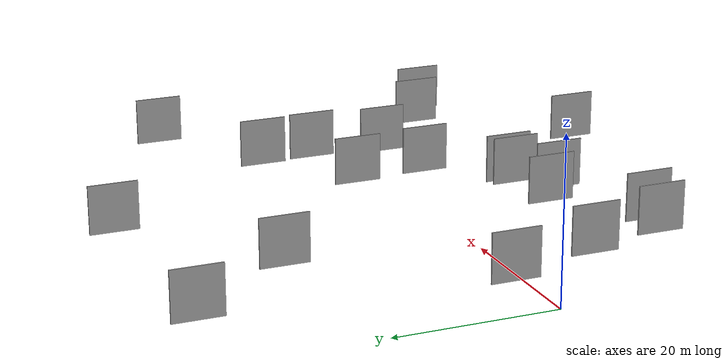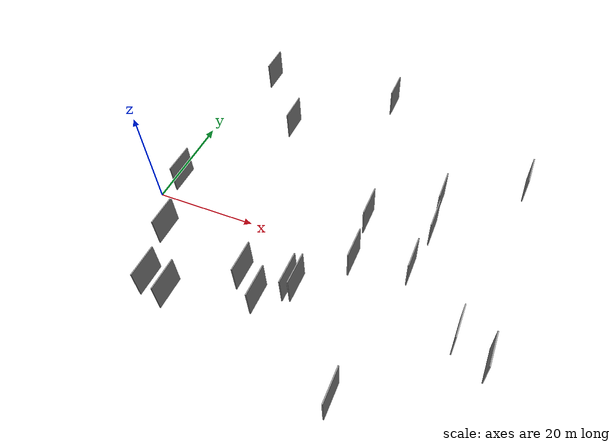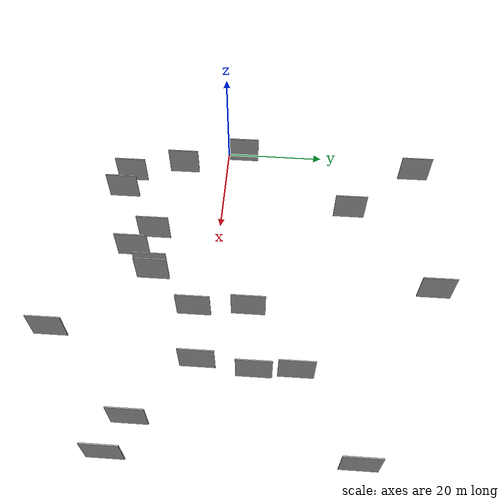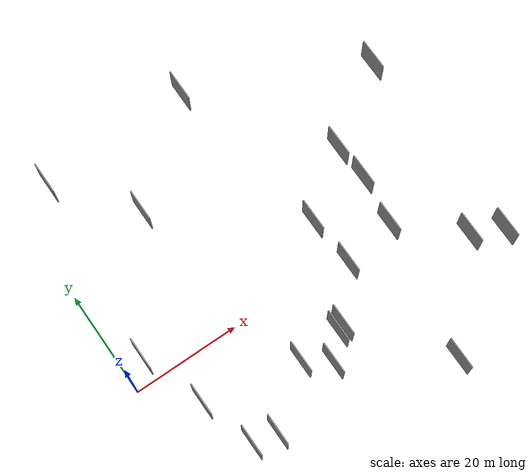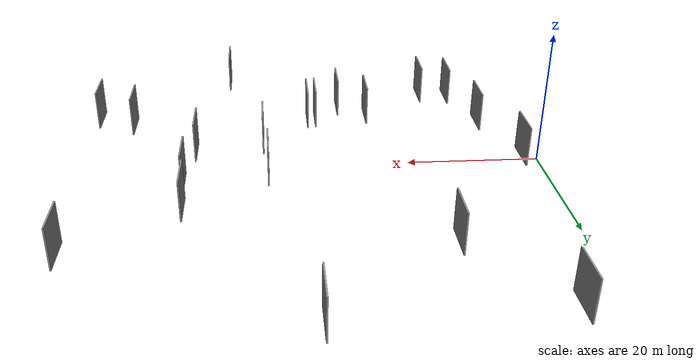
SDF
<sdf version="1.6">
 <world name="default">
  <scene>
   <sky><clouds><speed>12</speed></clouds></sky>
   <ambient>0.4 0.4 0.4 1</ambient>
   <background>0.7 0.7 0.7 1</background>
   <shadows>1</shadows>
  </scene>
  <gravity>0 0 -9.8066</gravity>
  <magnetic_field>6e-06 2.3e-05 -4.2e-05</magnetic_field>
  <physics default="0" name="default_physics" type="ode">
   <ode>
    <solver>
     <type>quick</type>
     <iters>10</iters>
     <sor>1.0</sor>
     <use_dynamic_moi_rescaling>0</use_dynamic_moi_rescaling>
    </solver>
    <constraints>
     <cfm>0</cfm>
     <erp>0.2</erp>
     <contact_max_correcting_vel>100</contact_max_correcting_vel>
     <contact_surface_layer>0.001</contact_surface_layer>
    </constraints>
   </ode>
   <max_step_size>0.004</max_step_size>
   <real_time_factor>1</real_time_factor>
   <real_time_update_rate>250</real_time_update_rate>
  </physics>
  <light name="sun" type="directional">
   <pose>0 0 10 0 0 0</pose>
   <diffuse>0.8 0.8 0.8 1</diffuse>
   <specular>0.2 0.2 0.2 1</specular>
   <attenuation>
    <range>1000</range>
    <constant>0.9</constant>
    <linear>0.01</linear>
    <quadratic>0.001</quadratic>
   </attenuation>
   <direction>-0.5 0.1 -0.9</direction>
  </light>
  <model name="grey_wall_1">
   <static>1</static>
   <pose>17.8033 25.2054 2.5 0.000000 0.000000 1.570796</pose>
   <link name="link">
    <pose>0 0 3.00 0 0 0</pose>
    <collision name="collision"><geometry><box><size>6.00 0.2 6.00</size></box></geometry></collision>
    <visual name="visual">
     <cast_shadows>0</cast_shadows>
     <geometry><box><size>6.00 0.2 6.00</size></box></geometry>
     <material>
      <script>
       <uri>model://grey_wall/materials/scripts</uri>
       <uri>model://grey_wall/materials/textures</uri>
       <name>vrc/grey_wall</name>
      </script>
     </material>
    </visual>
   </link>
  </model>
  <model name="grey_wall_2">
   <static>1</static>
   <pose>41.2191 7.0186 2.5 0.000000 0.000000 1.570796</pose>
   <link name="link">
    <pose>0 0 3.00 0 0 0</pose>
    <collision name="collision"><geometry><box><size>6.00 0.2 6.00</size></box></geometry></collision>
    <visual name="visual">
     <cast_shadows>0</cast_shadows>
     <geometry><box><size>6.00 0.2 6.00</size></box></geometry>
     <material>
      <script>
       <uri>model://grey_wall/materials/scripts</uri>
       <uri>model://grey_wall/materials/textures</uri>
       <name>vrc/grey_wall</name>
      </script>
     </material>
    </visual>
   </link>
  </model>
  <model name="grey_wall_3">
   <static>1</static>
   <pose>47.5766 -26.5943 2.5 0.000000 0.000000 1.570796</pose>
   <link name="link">
    <pose>0 0 3.00 0 0 0</pose>
    <collision name="collision"><geometry><box><size>6.00 0.2 6.00</size></box></geometry></collision>
    <visual name="visual">
     <cast_shadows>0</cast_shadows>
     <geometry><box><size>6.00 0.2 6.00</size></box></geometry>
     <material>
      <script>
       <uri>model://grey_wall/materials/scripts</uri>
       <uri>model://grey_wall/materials/textures</uri>
       <name>vrc/grey_wall</name>
      </script>
     </material>
    </visual>
   </link>
  </model>
  <model name="grey_wall_4">
   <static>1</static>
   <pose>33.5749 -11.2108 2.5 0.000000 0.000000 1.570796</pose>
   <link name="link">
    <pose>0 0 3.00 0 0 0</pose>
    <collision name="collision"><geometry><box><size>6.00 0.2 6.00</size></box></geometry></collision>
    <visual name="visual">
     <cast_shadows>0</cast_shadows>
     <geometry><box><size>6.00 0.2 6.00</size></box></geometry>
     <material>
      <script>
       <uri>model://grey_wall/materials/scripts</uri>
       <uri>model://grey_wall/materials/textures</uri>
       <name>vrc/grey_wall</name>
      </script>
     </material>
    </visual>
   </link>
  </model>
  <model name="grey_wall_5">
   <static>1</static>
   <pose>10.8724 -18.7502 2.5 0.000000 0.000000 1.570796</pose>
   <link name="link">
    <pose>0 0 3.00 0 0 0</pose>
    <collision name="collision"><geometry><box><size>6.00 0.2 6.00</size></box></geometry></collision>
    <visual name="visual">
     <cast_shadows>0</cast_shadows>
     <geometry><box><size>6.00 0.2 6.00</size></box></geometry>
     <material>
      <script>
       <uri>model://grey_wall/materials/scripts</uri>
       <uri>model://grey_wall/materials/textures</uri>
       <name>vrc/grey_wall</name>
      </script>
     </material>
    </visual>
   </link>
  </model>
  <model name="grey_wall_6">
   <static>1</static>
   <pose>53.0386 8.7296 2.5 0.000000 0.000000 1.570796</pose>
   <link name="link">
    <pose>0 0 3.00 0 0 0</pose>
    <collision name="collision"><geometry><box><size>6.00 0.2 6.00</size></box></geometry></collision>
    <visual name="visual">
     <cast_shadows>0</cast_shadows>
     <geometry><box><size>6.00 0.2 6.00</size></box></geometry>
     <material>
      <script>
       <uri>model://grey_wall/materials/scripts</uri>
       <uri>model://grey_wall/materials/textures</uri>
       <name>vrc/grey_wall</name>
      </script>
     </material>
    </visual>
   </link>
  </model>
  <model name="grey_wall_7">
   <static>1</static>
   <pose>25.4214 -11.9748 2.5 0.000000 0.000000 1.570796</pose>
   <link name="link">
    <pose>0 0 3.00 0 0 0</pose>
    <collision name="collision"><geometry><box><size>6.00 0.2 6.00</size></box></geometry></collision>
    <visual name="visual">
     <cast_shadows>0</cast_shadows>
     <geometry><box><size>6.00 0.2 6.00</size></box></geometry>
     <material>
      <script>
       <uri>model://grey_wall/materials/scripts</uri>
       <uri>model://grey_wall/materials/textures</uri>
       <name>vrc/grey_wall</name>
      </script>
     </material>
    </visual>
   </link>
  </model>
  <model name="grey_wall_8">
   <static>1</static>
   <pose>34.8385 -10.8383 2.5 0.000000 0.000000 1.570796</pose>
   <link name="link">
    <pose>0 0 3.00 0 0 0</pose>
    <collision name="collision"><geometry><box><size>6.00 0.2 6.00</size></box></geometry></collision>
    <visual name="visual">
     <cast_shadows>0</cast_shadows>
     <geometry><box><size>6.00 0.2 6.00</size></box></geometry>
     <material>
      <script>
       <uri>model://grey_wall/materials/scripts</uri>
       <uri>model://grey_wall/materials/textures</uri>
       <name>vrc/grey_wall</name>
      </script>
     </material>
    </visual>
   </link>
  </model>
  <model name="grey_wall_9">
   <static>1</static>
   <pose>51.8565 -0.7066 2.5 0.000000 0.000000 1.570796</pose>
   <link name="link">
    <pose>0 0 3.00 0 0 0</pose>
    <collision name="collision"><geometry><box><size>6.00 0.2 6.00</size></box></geometry></collision>
    <visual name="visual">
     <cast_shadows>0</cast_shadows>
     <geometry><box><size>6.00 0.2 6.00</size></box></geometry>
     <material>
      <script>
       <uri>model://grey_wall/materials/scripts</uri>
       <uri>model://grey_wall/materials/textures</uri>
       <name>vrc/grey_wall</name>
      </script>
     </material>
    </visual>
   </link>
  </model>
  <model name="grey_wall_10">
   <static>1</static>
   <pose>6.8920 38.6734 2.5 0.000000 0.000000 1.570796</pose>
   <link name="link">
    <pose>0 0 3.00 0 0 0</pose>
    <collision name="collision"><geometry><box><size>6.00 0.2 6.00</size></box></geometry></collision>
    <visual name="visual">
     <cast_shadows>0</cast_shadows>
     <geometry><box><size>6.00 0.2 6.00</size></box></geometry>
     <material>
      <script>
       <uri>model://grey_wall/materials/scripts</uri>
       <uri>model://grey_wall/materials/textures</uri>
       <name>vrc/grey_wall</name>
      </script>
     </material>
    </visual>
   </link>
  </model>
  <model name="grey_wall_11">
   <static>1</static>
   <pose>7.8629 -8.4507 2.5 0.000000 0.000000 1.570796</pose>
   <link name="link">
    <pose>0 0 3.00 0 0 0</pose>
    <collision name="collision"><geometry><box><size>6.00 0.2 6.00</size></box></geometry></collision>
    <visual name="visual">
     <cast_shadows>0</cast_shadows>
     <geometry><box><size>6.00 0.2 6.00</size></box></geometry>
     <material>
      <script>
       <uri>model://grey_wall/materials/scripts</uri>
       <uri>model://grey_wall/materials/textures</uri>
       <name>vrc/grey_wall</name>
      </script>
     </material>
    </visual>
   </link>
  </model>
  <model name="grey_wall_12">
   <static>1</static>
   <pose>52.6440 15.5868 2.5 0.000000 0.000000 1.570796</pose>
   <link name="link">
    <pose>0 0 3.00 0 0 0</pose>
    <collision name="collision"><geometry><box><size>6.00 0.2 6.00</size></box></geometry></collision>
    <visual name="visual">
     <cast_shadows>0</cast_shadows>
     <geometry><box><size>6.00 0.2 6.00</size></box></geometry>
     <material>
      <script>
       <uri>model://grey_wall/materials/scripts</uri>
       <uri>model://grey_wall/materials/textures</uri>
       <name>vrc/grey_wall</name>
      </script>
     </material>
    </visual>
   </link>
  </model>
  <model name="grey_wall_13">
   <static>1</static>
   <pose>3.7919 3.5597 2.5 0.000000 0.000000 1.570796</pose>
   <link name="link">
    <pose>0 0 3.00 0 0 0</pose>
    <collision name="collision"><geometry><box><size>6.00 0.2 6.00</size></box></geometry></collision>
    <visual name="visual">
     <cast_shadows>0</cast_shadows>
     <geometry><box><size>6.00 0.2 6.00</size></box></geometry>
     <material>
      <script>
       <uri>model://grey_wall/materials/scripts</uri>
       <uri>model://grey_wall/materials/textures</uri>
       <name>vrc/grey_wall</name>
      </script>
     </material>
    </visual>
   </link>
  </model>
  <model name="grey_wall_14">
   <static>1</static>
   <pose>29.7500 -15.2706 2.5 0.000000 0.000000 1.570796</pose>
   <link name="link">
    <pose>0 0 3.00 0 0 0</pose>
    <collision name="collision"><geometry><box><size>6.00 0.2 6.00</size></box></geometry></collision>
    <visual name="visual">
     <cast_shadows>0</cast_shadows>
     <geometry><box><size>6.00 0.2 6.00</size></box></geometry>
     <material>
      <script>
       <uri>model://grey_wall/materials/scripts</uri>
       <uri>model://grey_wall/materials/textures</uri>
       <name>vrc/grey_wall</name>
      </script>
     </material>
    </visual>
   </link>
  </model>
  <model name="grey_wall_15">
   <static>1</static>
   <pose>35.5366 39.8826 2.5 0.000000 0.000000 1.570796</pose>
   <link name="link">
    <pose>0 0 3.00 0 0 0</pose>
    <collision name="collision"><geometry><box><size>6.00 0.2 6.00</size></box></geometry></collision>
    <visual name="visual">
     <cast_shadows>0</cast_shadows>
     <geometry><box><size>6.00 0.2 6.00</size></box></geometry>
     <material>
      <script>
       <uri>model://grey_wall/materials/scripts</uri>
       <uri>model://grey_wall/materials/textures</uri>
       <name>vrc/grey_wall</name>
      </script>
     </material>
    </visual>
   </link>
  </model>
  <model name="grey_wall_16">
   <static>1</static>
   <pose>67.0223 25.2797 2.5 0.000000 0.000000 1.570796</pose>
   <link name="link">
    <pose>0 0 3.00 0 0 0</pose>
    <collision name="collision"><geometry><box><size>6.00 0.2 6.00</size></box></geometry></collision>
    <visual name="visual">
     <cast_shadows>0</cast_shadows>
     <geometry><box><size>6.00 0.2 6.00</size></box></geometry>
     <material>
      <script>
       <uri>model://grey_wall/materials/scripts</uri>
       <uri>model://grey_wall/materials/textures</uri>
       <name>vrc/grey_wall</name>
      </script>
     </material>
    </visual>
   </link>
  </model>
  <model name="grey_wall_17">
   <static>1</static>
   <pose>67.7770 -12.8453 2.5 0.000000 0.000000 1.570796</pose>
   <link name="link">
    <pose>0 0 3.00 0 0 0</pose>
    <collision name="collision"><geometry><box><size>6.00 0.2 6.00</size></box></geometry></collision>
    <visual name="visual">
     <cast_shadows>0</cast_shadows>
     <geometry><box><size>6.00 0.2 6.00</size></box></geometry>
     <material>
      <script>
       <uri>model://grey_wall/materials/scripts</uri>
       <uri>model://grey_wall/materials/textures</uri>
       <name>vrc/grey_wall</name>
      </script>
     </material>
    </visual>
   </link>
  </model>
  <model name="grey_wall_18">
   <static>1</static>
   <pose>62.1613 -10.1446 2.5 0.000000 0.000000 1.570796</pose>
   <link name="link">
    <pose>0 0 3.00 0 0 0</pose>
    <collision name="collision"><geometry><box><size>6.00 0.2 6.00</size></box></geometry></collision>
    <visual name="visual">
     <cast_shadows>0</cast_shadows>
     <geometry><box><size>6.00 0.2 6.00</size></box></geometry>
     <material>
      <script>
       <uri>model://grey_wall/materials/scripts</uri>
       <uri>model://grey_wall/materials/textures</uri>
       <name>vrc/grey_wall</name>
      </script>
     </material>
    </visual>
   </link>
  </model>
  <model name="grey_wall_19">
   <static>1</static>
   <pose>15.3770 -19.7234 2.5 0.000000 0.000000 1.570796</pose>
   <link name="link">
    <pose>0 0 3.00 0 0 0</pose>
    <collision name="collision"><geometry><box><size>6.00 0.2 6.00</size></box></geometry></collision>
    <visual name="visual">
     <cast_shadows>0</cast_shadows>
     <geometry><box><size>6.00 0.2 6.00</size></box></geometry>
     <material>
      <script>
       <uri>model://grey_wall/materials/scripts</uri>
       <uri>model://grey_wall/materials/textures</uri>
       <name>vrc/grey_wall</name>
      </script>
     </material>
    </visual>
   </link>
  </model>
  <model name="grey_wall_20">
   <static>1</static>
   <pose>41.9083 -2.4762 2.5 0.000000 0.000000 1.570796</pose>
   <link name="link">
    <pose>0 0 3.00 0 0 0</pose>
    <collision name="collision"><geometry><box><size>6.00 0.2 6.00</size></box></geometry></collision>
    <visual name="visual">
     <cast_shadows>0</cast_shadows>
     <geometry><box><size>6.00 0.2 6.00</size></box></geometry>
     <material>
      <script>
       <uri>model://grey_wall/materials/scripts</uri>
       <uri>model://grey_wall/materials/textures</uri>
       <name>vrc/grey_wall</name>
      </script>
     </material>
    </visual>
   </link>
  </model>
 </world>
</sdf>
